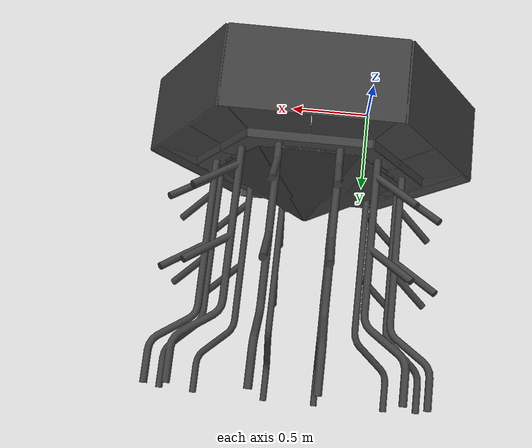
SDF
<?xml version="1.0" encoding="utf-8"?>
<sdf version="1.5">
  <model name="Reef">
    <pose>0 0 0.00999999999999994 0 0 0</pose>
    <plugin name="clock" filename="libgz_clock.so">
      <topic>/gazebo/frc/time</topic>
    </plugin>
    <link name="ReefDF">
      <gravity>1</gravity>
      <self_collide>0</self_collide>
      <pose>0.335204704943172 0.58065243822306 0.490540823173799 0 0 0</pose>
      <must_be_base_link>1</must_be_base_link>
      <velocity_decay>
        <linear>0</linear>
        <angular>0</angular>
      </velocity_decay>
      <inertial>
        <mass>10</mass>
        <pose>-1.11022302462516E-16 -3.33066907387547E-16 -2.22044604925031E-16 0 0 0</pose>

      </inertial>
      <collision name="ReefDF_collision">
        <pose>-0.559599677626347 -0.745766351125604 -0.163831762287842 0 0 0</pose>
        <geometry>
          <mesh>
            <scale>1 1 1</scale>
            <uri>model://Reef/meshes/ReefDF_col.STL</uri>
          </mesh>
        </geometry>
        <surface>
          <contact>
            <ode />
          </contact>
          <friction>
            <ode>
              <mu>0</mu>
              <mu2>0</mu2>
            </ode>
          </friction>
        </surface>
      </collision>
      <visual name="ReefDF_visual">
        <pose>-0.559599677626347 -0.745766351125604 -0.163831762287842 0 0 0</pose>
        <material>
          <ambient>0.25 0.25  0.25  1</ambient>
          <diffuse>0.25 0.25  0.25  1</diffuse>
        </material>
        <geometry>
          <mesh>
            <scale>1 1 1</scale>
            <uri>model://Reef/meshes/ReefDF.STL</uri>
          </mesh>
        </geometry>
      </visual>
    </link>
  </model>
</sdf>
